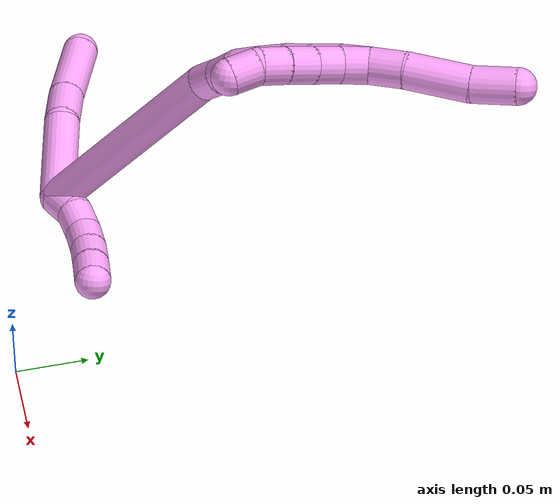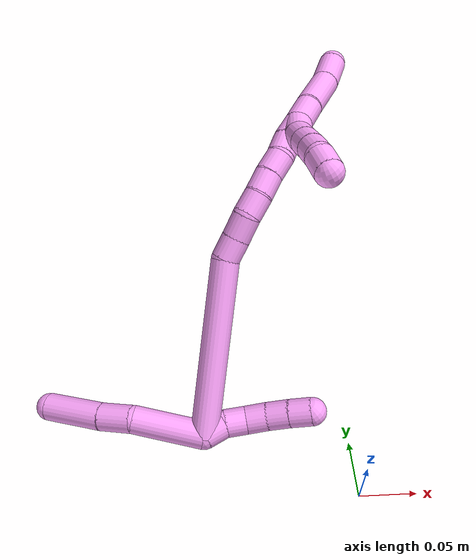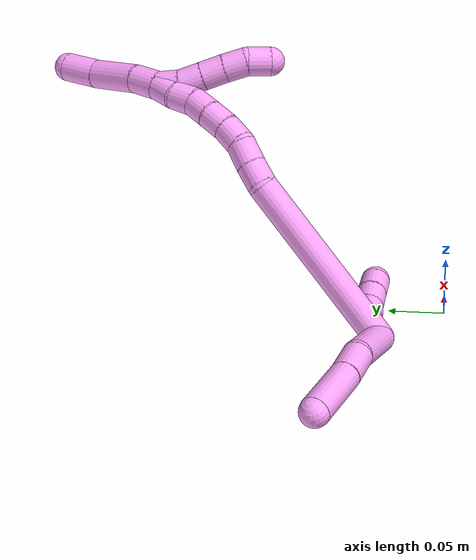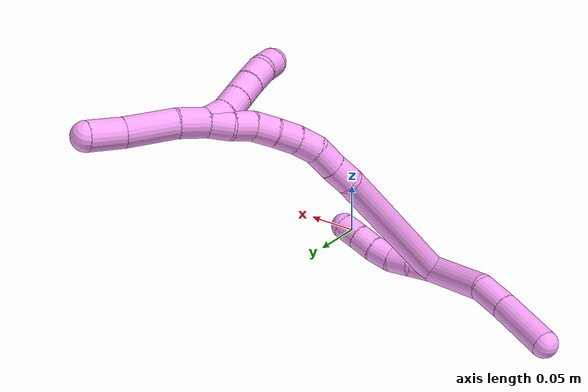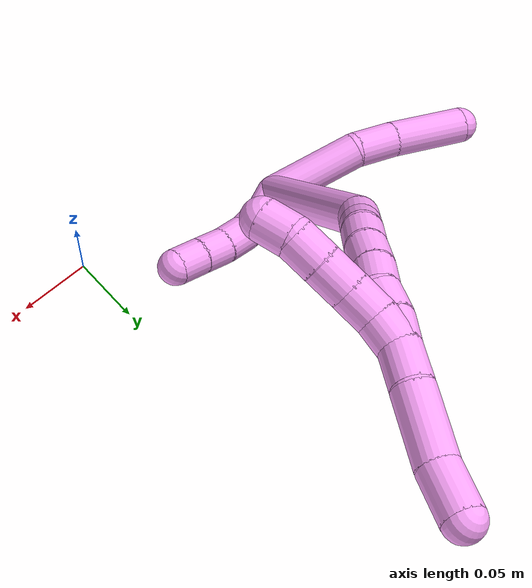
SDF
<sdf version="1.7">
 <world name="default">
  <model name="4">
   <static>0</static>
   <link name="4">
    <collision name="collision-cylinder-e_1_2_8">
     <pose>-0.024611 -0.00772 0.019468 0.377552 -0.865747 -0.176114</pose>
     <geometry><cylinder><radius>0.0125</radius><length>0.06463</length></cylinder></geometry>
     <surface>
      <friction><ode><mu>1.16</mu><mu2>1.16</mu2><slip1>0</slip1><slip2>0</slip2></ode></friction>
      <contact><ode><kp>1e+06</kp><kd>1</kd><max_vel>0</max_vel><min_depth>0.001</min_depth></ode></contact>
     </surface>
    </collision>
    <visual name="visual-cylinder-e_1_2_8">
     <pose>-0.024611 -0.00772 0.019468 0.377552 -0.865747 -0.176114</pose>
     <geometry><cylinder><radius>0.0125</radius><length>0.06463</length></cylinder></geometry>
     <material><ambient>1 0.65098 0.996078 1</ambient></material>
    </visual>
    <collision name="collision-cylinder-e_2_8_9">
     <pose>-0.063303 -0.018693 0.043814 0.587876 -1.17625 -0.398361</pose>
     <geometry><cylinder><radius>0.0125</radius><length>0.030507</length></cylinder></geometry>
     <surface>
      <friction><ode><mu>1.16</mu><mu2>1.16</mu2><slip1>0</slip1><slip2>0</slip2></ode></friction>
      <contact><ode><kp>1e+06</kp><kd>1</kd><max_vel>0</max_vel><min_depth>0.001</min_depth></ode></contact>
     </surface>
    </collision>
    <visual name="visual-cylinder-e_2_8_9">
     <pose>-0.063303 -0.018693 0.043814 0.587876 -1.17625 -0.398361</pose>
     <geometry><cylinder><radius>0.0125</radius><length>0.030507</length></cylinder></geometry>
     <material><ambient>1 0.65098 0.996078 1</ambient></material>
    </visual>
    <collision name="collision-cylinder-e_3_9_6">
     <pose>-0.102876 -0.025311 0.058248 0.338803 -1.19253 -0.231124</pose>
     <geometry><cylinder><radius>0.0125</radius><length>0.054863</length></cylinder></geometry>
     <surface>
      <friction><ode><mu>1.16</mu><mu2>1.16</mu2><slip1>0</slip1><slip2>0</slip2></ode></friction>
      <contact><ode><kp>1e+06</kp><kd>1</kd><max_vel>0</max_vel><min_depth>0.001</min_depth></ode></contact>
     </surface>
    </collision>
    <visual name="visual-cylinder-e_3_9_6">
     <pose>-0.102876 -0.025311 0.058248 0.338803 -1.19253 -0.231124</pose>
     <geometry><cylinder><radius>0.0125</radius><length>0.054863</length></cylinder></geometry>
     <material><ambient>1 0.65098 0.996078 1</ambient></material>
    </visual>
    <collision name="collision-cylinder-e_1_2_10">
     <pose>0.005774 0.007914 -0.002006 -1.81905 0.615559 -0.775645</pose>
     <geometry><cylinder><radius>0.0125</radius><length>0.02</length></cylinder></geometry>
     <surface>
      <friction><ode><mu>1.16</mu><mu2>1.16</mu2><slip1>0</slip1><slip2>0</slip2></ode></friction>
      <contact><ode><kp>1e+06</kp><kd>1</kd><max_vel>0</max_vel><min_depth>0.001</min_depth></ode></contact>
     </surface>
    </collision>
    <visual name="visual-cylinder-e_1_2_10">
     <pose>0.005774 0.007914 -0.002006 -1.81905 0.615559 -0.775645</pose>
     <geometry><cylinder><radius>0.0125</radius><length>0.02</length></cylinder></geometry>
     <material><ambient>1 0.65098 0.996078 1</ambient></material>
    </visual>
    <collision name="collision-cylinder-e_2_10_11">
     <pose>0.018277 0.021649 -0.008577 -2.23582 0.738129 -1.34318</pose>
     <geometry><cylinder><radius>0.0125</radius><length>0.02</length></cylinder></geometry>
     <surface>
      <friction><ode><mu>1.16</mu><mu2>1.16</mu2><slip1>0</slip1><slip2>0</slip2></ode></friction>
      <contact><ode><kp>1e+06</kp><kd>1</kd><max_vel>0</max_vel><min_depth>0.001</min_depth></ode></contact>
     </surface>
    </collision>
    <visual name="visual-cylinder-e_2_10_11">
     <pose>0.018277 0.021649 -0.008577 -2.23582 0.738129 -1.34318</pose>
     <geometry><cylinder><radius>0.0125</radius><length>0.02</length></cylinder></geometry>
     <material><ambient>1 0.65098 0.996078 1</ambient></material>
    </visual>
    <collision name="collision-cylinder-e_3_11_12">
     <pose>0.03343 0.032152 -0.015812 -2.08911 1.00163 -1.5114</pose>
     <geometry><cylinder><radius>0.0125</radius><length>0.02</length></cylinder></geometry>
     <surface>
      <friction><ode><mu>1.16</mu><mu2>1.16</mu2><slip1>0</slip1><slip2>0</slip2></ode></friction>
      <contact><ode><kp>1e+06</kp><kd>1</kd><max_vel>0</max_vel><min_depth>0.001</min_depth></ode></contact>
     </surface>
    </collision>
    <visual name="visual-cylinder-e_3_11_12">
     <pose>0.03343 0.032152 -0.015812 -2.08911 1.00163 -1.5114</pose>
     <geometry><cylinder><radius>0.0125</radius><length>0.02</length></cylinder></geometry>
     <material><ambient>1 0.65098 0.996078 1</ambient></material>
    </visual>
    <collision name="collision-cylinder-e_4_12_13">
     <pose>0.050885 0.040589 -0.020562 -2.07666 1.12708 -1.64062</pose>
     <geometry><cylinder><radius>0.0125</radius><length>0.02</length></cylinder></geometry>
     <surface>
      <friction><ode><mu>1.16</mu><mu2>1.16</mu2><slip1>0</slip1><slip2>0</slip2></ode></friction>
      <contact><ode><kp>1e+06</kp><kd>1</kd><max_vel>0</max_vel><min_depth>0.001</min_depth></ode></contact>
     </surface>
    </collision>
    <visual name="visual-cylinder-e_4_12_13">
     <pose>0.050885 0.040589 -0.020562 -2.07666 1.12708 -1.64062</pose>
     <geometry><cylinder><radius>0.0125</radius><length>0.02</length></cylinder></geometry>
     <material><ambient>1 0.65098 0.996078 1</ambient></material>
    </visual>
    <collision name="collision-cylinder-e_5_13_5">
     <pose>0.068876 0.047968 -0.025211 -2.18752 1.11053 -1.75236</pose>
     <geometry><cylinder><radius>0.0125</radius><length>0.02</length></cylinder></geometry>
     <surface>
      <friction><ode><mu>1.16</mu><mu2>1.16</mu2><slip1>0</slip1><slip2>0</slip2></ode></friction>
      <contact><ode><kp>1e+06</kp><kd>1</kd><max_vel>0</max_vel><min_depth>0.001</min_depth></ode></contact>
     </surface>
    </collision>
    <visual name="visual-cylinder-e_5_13_5">
     <pose>0.068876 0.047968 -0.025211 -2.18752 1.11053 -1.75236</pose>
     <geometry><cylinder><radius>0.0125</radius><length>0.02</length></cylinder></geometry>
     <material><ambient>1 0.65098 0.996078 1</ambient></material>
    </visual>
    <collision name="collision-cylinder-e_1_2_14">
     <pose>0.018903 0.052318 0.055618 -0.754833 0.242679 -0.096603</pose>
     <geometry><cylinder><radius>0.0125</radius><length>0.157325</length></cylinder></geometry>
     <surface>
      <friction><ode><mu>1.16</mu><mu2>1.16</mu2><slip1>0</slip1><slip2>0</slip2></ode></friction>
      <contact><ode><kp>1e+06</kp><kd>1</kd><max_vel>0</max_vel><min_depth>0.001</min_depth></ode></contact>
     </surface>
    </collision>
    <visual name="visual-cylinder-e_1_2_14">
     <pose>0.018903 0.052318 0.055618 -0.754833 0.242679 -0.096603</pose>
     <geometry><cylinder><radius>0.0125</radius><length>0.157325</length></cylinder></geometry>
     <material><ambient>1 0.65098 0.996078 1</ambient></material>
    </visual>
    <collision name="collision-cylinder-e_2_14_15">
     <pose>0.042966 0.111882 0.116219 -0.968425 0.530541 -0.283866</pose>
     <geometry><cylinder><radius>0.0125</radius><length>0.020394</length></cylinder></geometry>
     <surface>
      <friction><ode><mu>1.16</mu><mu2>1.16</mu2><slip1>0</slip1><slip2>0</slip2></ode></friction>
      <contact><ode><kp>1e+06</kp><kd>1</kd><max_vel>0</max_vel><min_depth>0.001</min_depth></ode></contact>
     </surface>
    </collision>
    <visual name="visual-cylinder-e_2_14_15">
     <pose>0.042966 0.111882 0.116219 -0.968425 0.530541 -0.283866</pose>
     <geometry><cylinder><radius>0.0125</radius><length>0.020394</length></cylinder></geometry>
     <material><ambient>1 0.65098 0.996078 1</ambient></material>
    </visual>
    <collision name="collision-cylinder-e_3_15_16">
     <pose>0.053777 0.126159 0.126906 -0.889154 0.558112 -0.271322</pose>
     <geometry><cylinder><radius>0.0125</radius><length>0.021343</length></cylinder></geometry>
     <surface>
      <friction><ode><mu>1.16</mu><mu2>1.16</mu2><slip1>0</slip1><slip2>0</slip2></ode></friction>
      <contact><ode><kp>1e+06</kp><kd>1</kd><max_vel>0</max_vel><min_depth>0.001</min_depth></ode></contact>
     </surface>
    </collision>
    <visual name="visual-cylinder-e_3_15_16">
     <pose>0.053777 0.126159 0.126906 -0.889154 0.558112 -0.271322</pose>
     <geometry><cylinder><radius>0.0125</radius><length>0.021343</length></cylinder></geometry>
     <material><ambient>1 0.65098 0.996078 1</ambient></material>
    </visual>
    <collision name="collision-cylinder-e_4_16_17">
     <pose>0.063471 0.141765 0.136106 -1.18365 0.411543 -0.278792</pose>
     <geometry><cylinder><radius>0.0125</radius><length>0.02021</length></cylinder></geometry>
     <surface>
      <friction><ode><mu>1.16</mu><mu2>1.16</mu2><slip1>0</slip1><slip2>0</slip2></ode></friction>
      <contact><ode><kp>1e+06</kp><kd>1</kd><max_vel>0</max_vel><min_depth>0.001</min_depth></ode></contact>
     </surface>
    </collision>
    <visual name="visual-cylinder-e_4_16_17">
     <pose>0.063471 0.141765 0.136106 -1.18365 0.411543 -0.278792</pose>
     <geometry><cylinder><radius>0.0125</radius><length>0.02021</length></cylinder></geometry>
     <material><ambient>1 0.65098 0.996078 1</ambient></material>
    </visual>
    <collision name="collision-cylinder-e_5_17_18">
     <pose>0.070316 0.159696 0.142737 -1.24751 0.276857 -0.199838</pose>
     <geometry><cylinder><radius>0.0125</radius><length>0.020513</length></cylinder></geometry>
     <surface>
      <friction><ode><mu>1.16</mu><mu2>1.16</mu2><slip1>0</slip1><slip2>0</slip2></ode></friction>
      <contact><ode><kp>1e+06</kp><kd>1</kd><max_vel>0</max_vel><min_depth>0.001</min_depth></ode></contact>
     </surface>
    </collision>
    <visual name="visual-cylinder-e_5_17_18">
     <pose>0.070316 0.159696 0.142737 -1.24751 0.276857 -0.199838</pose>
     <geometry><cylinder><radius>0.0125</radius><length>0.020513</length></cylinder></geometry>
     <material><ambient>1 0.65098 0.996078 1</ambient></material>
    </visual>
    <collision name="collision-cylinder-e_6_18_19">
     <pose>0.07623 0.178409 0.148055 -1.34149 0.312953 -0.249069</pose>
     <geometry><cylinder><radius>0.0125</radius><length>0.020201</length></cylinder></geometry>
     <surface>
      <friction><ode><mu>1.16</mu><mu2>1.16</mu2><slip1>0</slip1><slip2>0</slip2></ode></friction>
      <contact><ode><kp>1e+06</kp><kd>1</kd><max_vel>0</max_vel><min_depth>0.001</min_depth></ode></contact>
     </surface>
    </collision>
    <visual name="visual-cylinder-e_6_18_19">
     <pose>0.07623 0.178409 0.148055 -1.34149 0.312953 -0.249069</pose>
     <geometry><cylinder><radius>0.0125</radius><length>0.020201</length></cylinder></geometry>
     <material><ambient>1 0.65098 0.996078 1</ambient></material>
    </visual>
    <collision name="collision-cylinder-e_7_19_20">
     <pose>0.079556 0.19762 0.151949 -1.39905 0.021668 -0.018233</pose>
     <geometry><cylinder><radius>0.0125</radius><length>0.020005</length></cylinder></geometry>
     <surface>
      <friction><ode><mu>1.16</mu><mu2>1.16</mu2><slip1>0</slip1><slip2>0</slip2></ode></friction>
      <contact><ode><kp>1e+06</kp><kd>1</kd><max_vel>0</max_vel><min_depth>0.001</min_depth></ode></contact>
     </surface>
    </collision>
    <visual name="visual-cylinder-e_7_19_20">
     <pose>0.079556 0.19762 0.151949 -1.39905 0.021668 -0.018233</pose>
     <geometry><cylinder><radius>0.0125</radius><length>0.020005</length></cylinder></geometry>
     <material><ambient>1 0.65098 0.996078 1</ambient></material>
    </visual>
    <collision name="collision-cylinder-e_8_20_1">
     <pose>0.081958 0.217151 0.154944 -1.43866 0.220175 -0.193029</pose>
     <geometry><cylinder><radius>0.0125</radius><length>0.020008</length></cylinder></geometry>
     <surface>
      <friction><ode><mu>1.16</mu><mu2>1.16</mu2><slip1>0</slip1><slip2>0</slip2></ode></friction>
      <contact><ode><kp>1e+06</kp><kd>1</kd><max_vel>0</max_vel><min_depth>0.001</min_depth></ode></contact>
     </surface>
    </collision>
    <visual name="visual-cylinder-e_8_20_1">
     <pose>0.081958 0.217151 0.154944 -1.43866 0.220175 -0.193029</pose>
     <geometry><cylinder><radius>0.0125</radius><length>0.020008</length></cylinder></geometry>
     <material><ambient>1 0.65098 0.996078 1</ambient></material>
    </visual>
    <collision name="collision-cylinder-e_1_1_21">
     <pose>0.088054 0.217633 0.155854 1.61176 0.401881 0.418213</pose>
     <geometry><cylinder><radius>0.0125</radius><length>0.02</length></cylinder></geometry>
     <surface>
      <friction><ode><mu>1.16</mu><mu2>1.16</mu2><slip1>0</slip1><slip2>0</slip2></ode></friction>
      <contact><ode><kp>1e+06</kp><kd>1</kd><max_vel>0</max_vel><min_depth>0.001</min_depth></ode></contact>
     </surface>
    </collision>
    <visual name="visual-cylinder-e_1_1_21">
     <pose>0.088054 0.217633 0.155854 1.61176 0.401881 0.418213</pose>
     <geometry><cylinder><radius>0.0125</radius><length>0.02</length></cylinder></geometry>
     <material><ambient>1 0.65098 0.996078 1</ambient></material>
    </visual>
    <collision name="collision-cylinder-e_2_21_22">
     <pose>0.09853 0.200905 0.155887 1.51637 0.716096 0.68108</pose>
     <geometry><cylinder><radius>0.0125</radius><length>0.02</length></cylinder></geometry>
     <surface>
      <friction><ode><mu>1.16</mu><mu2>1.16</mu2><slip1>0</slip1><slip2>0</slip2></ode></friction>
      <contact><ode><kp>1e+06</kp><kd>1</kd><max_vel>0</max_vel><min_depth>0.001</min_depth></ode></contact>
     </surface>
    </collision>
    <visual name="visual-cylinder-e_2_21_22">
     <pose>0.09853 0.200905 0.155887 1.51637 0.716096 0.68108</pose>
     <geometry><cylinder><radius>0.0125</radius><length>0.02</length></cylinder></geometry>
     <material><ambient>1 0.65098 0.996078 1</ambient></material>
    </visual>
    <collision name="collision-cylinder-e_3_22_23">
     <pose>0.111752 0.185921 0.156678 1.51976 0.728584 0.695232</pose>
     <geometry><cylinder><radius>0.0125</radius><length>0.02</length></cylinder></geometry>
     <surface>
      <friction><ode><mu>1.16</mu><mu2>1.16</mu2><slip1>0</slip1><slip2>0</slip2></ode></friction>
      <contact><ode><kp>1e+06</kp><kd>1</kd><max_vel>0</max_vel><min_depth>0.001</min_depth></ode></contact>
     </surface>
    </collision>
    <visual name="visual-cylinder-e_3_22_23">
     <pose>0.111752 0.185921 0.156678 1.51976 0.728584 0.695232</pose>
     <geometry><cylinder><radius>0.0125</radius><length>0.02</length></cylinder></geometry>
     <material><ambient>1 0.65098 0.996078 1</ambient></material>
    </visual>
    <collision name="collision-cylinder-e_4_23_24">
     <pose>0.124813 0.170788 0.157091 1.5666 0.694862 0.69218</pose>
     <geometry><cylinder><radius>0.0125</radius><length>0.02</length></cylinder></geometry>
     <surface>
      <friction><ode><mu>1.16</mu><mu2>1.16</mu2><slip1>0</slip1><slip2>0</slip2></ode></friction>
      <contact><ode><kp>1e+06</kp><kd>1</kd><max_vel>0</max_vel><min_depth>0.001</min_depth></ode></contact>
     </surface>
    </collision>
    <visual name="visual-cylinder-e_4_23_24">
     <pose>0.124813 0.170788 0.157091 1.5666 0.694862 0.69218</pose>
     <geometry><cylinder><radius>0.0125</radius><length>0.02</length></cylinder></geometry>
     <material><ambient>1 0.65098 0.996078 1</ambient></material>
    </visual>
    <collision name="collision-cylinder-e_5_24_4">
     <pose>0.136933 0.155569 0.153882 1.97689 0.608524 0.889887</pose>
     <geometry><cylinder><radius>0.0125</radius><length>0.02</length></cylinder></geometry>
     <surface>
      <friction><ode><mu>1.16</mu><mu2>1.16</mu2><slip1>0</slip1><slip2>0</slip2></ode></friction>
      <contact><ode><kp>1e+06</kp><kd>1</kd><max_vel>0</max_vel><min_depth>0.001</min_depth></ode></contact>
     </surface>
    </collision>
    <visual name="visual-cylinder-e_5_24_4">
     <pose>0.136933 0.155569 0.153882 1.97689 0.608524 0.889887</pose>
     <geometry><cylinder><radius>0.0125</radius><length>0.02</length></cylinder></geometry>
     <material><ambient>1 0.65098 0.996078 1</ambient></material>
    </visual>
    <collision name="collision-cylinder-e_1_1_25">
     <pose>0.085087 0.239395 0.156929 -1.51525 0.074902 -0.070857</pose>
     <geometry><cylinder><radius>0.0125</radius><length>0.025244</length></cylinder></geometry>
     <surface>
      <friction><ode><mu>1.16</mu><mu2>1.16</mu2><slip1>0</slip1><slip2>0</slip2></ode></friction>
      <contact><ode><kp>1e+06</kp><kd>1</kd><max_vel>0</max_vel><min_depth>0.001</min_depth></ode></contact>
     </surface>
    </collision>
    <visual name="visual-cylinder-e_1_1_25">
     <pose>0.085087 0.239395 0.156929 -1.51525 0.074902 -0.070857</pose>
     <geometry><cylinder><radius>0.0125</radius><length>0.025244</length></cylinder></geometry>
     <material><ambient>1 0.65098 0.996078 1</ambient></material>
    </visual>
    <collision name="collision-cylinder-e_2_25_26">
     <pose>0.085593 0.27392 0.156483 -1.62292 -0.01993 0.020997</pose>
     <geometry><cylinder><radius>0.0125</radius><length>0.043982</length></cylinder></geometry>
     <surface>
      <friction><ode><mu>1.16</mu><mu2>1.16</mu2><slip1>0</slip1><slip2>0</slip2></ode></friction>
      <contact><ode><kp>1e+06</kp><kd>1</kd><max_vel>0</max_vel><min_depth>0.001</min_depth></ode></contact>
     </surface>
    </collision>
    <visual name="visual-cylinder-e_2_25_26">
     <pose>0.085593 0.27392 0.156483 -1.62292 -0.01993 0.020997</pose>
     <geometry><cylinder><radius>0.0125</radius><length>0.043982</length></cylinder></geometry>
     <material><ambient>1 0.65098 0.996078 1</ambient></material>
    </visual>
    <collision name="collision-cylinder-e_3_26_3">
     <pose>0.08439 0.311149 0.157046 -1.45934 -0.049728 0.044475</pose>
     <geometry><cylinder><radius>0.0125</radius><length>0.030774</length></cylinder></geometry>
     <surface>
      <friction><ode><mu>1.16</mu><mu2>1.16</mu2><slip1>0</slip1><slip2>0</slip2></ode></friction>
      <contact><ode><kp>1e+06</kp><kd>1</kd><max_vel>0</max_vel><min_depth>0.001</min_depth></ode></contact>
     </surface>
    </collision>
    <visual name="visual-cylinder-e_3_26_3">
     <pose>0.08439 0.311149 0.157046 -1.45934 -0.049728 0.044475</pose>
     <geometry><cylinder><radius>0.0125</radius><length>0.030774</length></cylinder></geometry>
     <material><ambient>1 0.65098 0.996078 1</ambient></material>
    </visual>
    <collision name="collision-sphere-3">
     <pose>0.083625 0.326421 0.158755 0 -0 0</pose>
     <geometry><sphere><radius>0.0125</radius></sphere></geometry>
     <surface>
      <friction><ode><mu>1.16</mu><mu2>1.16</mu2><slip1>0</slip1><slip2>0</slip2></ode></friction>
      <contact><ode><kp>1e+06</kp><kd>1</kd><max_vel>0</max_vel><min_depth>0.001</min_depth></ode></contact>
     </surface>
    </collision>
    <visual name="visual-sphere-3">
     <pose>0.083625 0.326421 0.158755 0 -0 0</pose>
     <geometry><sphere><radius>0.0125</radius></sphere></geometry>
     <material><ambient>1 0.65098 0.996078 1</ambient></material>
    </visual>
    <collision name="collision-sphere-26">
     <pose>0.085155 0.295876 0.155337 0 -0 0</pose>
     <geometry><sphere><radius>0.0125</radius></sphere></geometry>
     <surface>
      <friction><ode><mu>1.16</mu><mu2>1.16</mu2><slip1>0</slip1><slip2>0</slip2></ode></friction>
      <contact><ode><kp>1e+06</kp><kd>1</kd><max_vel>0</max_vel><min_depth>0.001</min_depth></ode></contact>
     </surface>
    </collision>
    <visual name="visual-sphere-26">
     <pose>0.085155 0.295876 0.155337 0 -0 0</pose>
     <geometry><sphere><radius>0.0125</radius></sphere></geometry>
     <material><ambient>1 0.65098 0.996078 1</ambient></material>
    </visual>
    <collision name="collision-sphere-25">
     <pose>0.086032 0.251963 0.157628 0 -0 0</pose>
     <geometry><sphere><radius>0.0125</radius></sphere></geometry>
     <surface>
      <friction><ode><mu>1.16</mu><mu2>1.16</mu2><slip1>0</slip1><slip2>0</slip2></ode></friction>
      <contact><ode><kp>1e+06</kp><kd>1</kd><max_vel>0</max_vel><min_depth>0.001</min_depth></ode></contact>
     </surface>
    </collision>
    <visual name="visual-sphere-25">
     <pose>0.086032 0.251963 0.157628 0 -0 0</pose>
     <geometry><sphere><radius>0.0125</radius></sphere></geometry>
     <material><ambient>1 0.65098 0.996078 1</ambient></material>
    </visual>
    <collision name="collision-sphere-4">
     <pose>0.142649 0.148031 0.150641 0 -0 0</pose>
     <geometry><sphere><radius>0.0125</radius></sphere></geometry>
     <surface>
      <friction><ode><mu>1.16</mu><mu2>1.16</mu2><slip1>0</slip1><slip2>0</slip2></ode></friction>
      <contact><ode><kp>1e+06</kp><kd>1</kd><max_vel>0</max_vel><min_depth>0.001</min_depth></ode></contact>
     </surface>
    </collision>
    <visual name="visual-sphere-4">
     <pose>0.142649 0.148031 0.150641 0 -0 0</pose>
     <geometry><sphere><radius>0.0125</radius></sphere></geometry>
     <material><ambient>1 0.65098 0.996078 1</ambient></material>
    </visual>
    <collision name="collision-sphere-24">
     <pose>0.131216 0.163106 0.157123 0 -0 0</pose>
     <geometry><sphere><radius>0.0125</radius></sphere></geometry>
     <surface>
      <friction><ode><mu>1.16</mu><mu2>1.16</mu2><slip1>0</slip1><slip2>0</slip2></ode></friction>
      <contact><ode><kp>1e+06</kp><kd>1</kd><max_vel>0</max_vel><min_depth>0.001</min_depth></ode></contact>
     </surface>
    </collision>
    <visual name="visual-sphere-24">
     <pose>0.131216 0.163106 0.157123 0 -0 0</pose>
     <geometry><sphere><radius>0.0125</radius></sphere></geometry>
     <material><ambient>1 0.65098 0.996078 1</ambient></material>
    </visual>
    <collision name="collision-sphere-23">
     <pose>0.118411 0.178469 0.157059 0 -0 0</pose>
     <geometry><sphere><radius>0.0125</radius></sphere></geometry>
     <surface>
      <friction><ode><mu>1.16</mu><mu2>1.16</mu2><slip1>0</slip1><slip2>0</slip2></ode></friction>
      <contact><ode><kp>1e+06</kp><kd>1</kd><max_vel>0</max_vel><min_depth>0.001</min_depth></ode></contact>
     </surface>
    </collision>
    <visual name="visual-sphere-23">
     <pose>0.118411 0.178469 0.157059 0 -0 0</pose>
     <geometry><sphere><radius>0.0125</radius></sphere></geometry>
     <material><ambient>1 0.65098 0.996078 1</ambient></material>
    </visual>
    <collision name="collision-sphere-22">
     <pose>0.105094 0.193372 0.156297 0 -0 0</pose>
     <geometry><sphere><radius>0.0125</radius></sphere></geometry>
     <surface>
      <friction><ode><mu>1.16</mu><mu2>1.16</mu2><slip1>0</slip1><slip2>0</slip2></ode></friction>
      <contact><ode><kp>1e+06</kp><kd>1</kd><max_vel>0</max_vel><min_depth>0.001</min_depth></ode></contact>
     </surface>
    </collision>
    <visual name="visual-sphere-22">
     <pose>0.105094 0.193372 0.156297 0 -0 0</pose>
     <geometry><sphere><radius>0.0125</radius></sphere></geometry>
     <material><ambient>1 0.65098 0.996078 1</ambient></material>
    </visual>
    <collision name="collision-sphere-21">
     <pose>0.091965 0.208437 0.155477 0 -0 0</pose>
     <geometry><sphere><radius>0.0125</radius></sphere></geometry>
     <surface>
      <friction><ode><mu>1.16</mu><mu2>1.16</mu2><slip1>0</slip1><slip2>0</slip2></ode></friction>
      <contact><ode><kp>1e+06</kp><kd>1</kd><max_vel>0</max_vel><min_depth>0.001</min_depth></ode></contact>
     </surface>
    </collision>
    <visual name="visual-sphere-21">
     <pose>0.091965 0.208437 0.155477 0 -0 0</pose>
     <geometry><sphere><radius>0.0125</radius></sphere></geometry>
     <material><ambient>1 0.65098 0.996078 1</ambient></material>
    </visual>
    <collision name="collision-sphere-1">
     <pose>0.084142 0.226828 0.15623 0 -0 0</pose>
     <geometry><sphere><radius>0.0125</radius></sphere></geometry>
     <surface>
      <friction><ode><mu>1.16</mu><mu2>1.16</mu2><slip1>0</slip1><slip2>0</slip2></ode></friction>
      <contact><ode><kp>1e+06</kp><kd>1</kd><max_vel>0</max_vel><min_depth>0.001</min_depth></ode></contact>
     </surface>
    </collision>
    <visual name="visual-sphere-1">
     <pose>0.084142 0.226828 0.15623 0 -0 0</pose>
     <geometry><sphere><radius>0.0125</radius></sphere></geometry>
     <material><ambient>1 0.65098 0.996078 1</ambient></material>
    </visual>
    <collision name="collision-sphere-11">
     <pose>0.025006 0.02747 -0.013142 0 -0 0</pose>
     <geometry><sphere><radius>0.0125</radius></sphere></geometry>
     <surface>
      <friction><ode><mu>1.16</mu><mu2>1.16</mu2><slip1>0</slip1><slip2>0</slip2></ode></friction>
      <contact><ode><kp>1e+06</kp><kd>1</kd><max_vel>0</max_vel><min_depth>0.001</min_depth></ode></contact>
     </surface>
    </collision>
    <visual name="visual-sphere-11">
     <pose>0.025006 0.02747 -0.013142 0 -0 0</pose>
     <geometry><sphere><radius>0.0125</radius></sphere></geometry>
     <material><ambient>1 0.65098 0.996078 1</ambient></material>
    </visual>
    <collision name="collision-sphere-10">
     <pose>0.011548 0.015828 -0.004012 0 -0 0</pose>
     <geometry><sphere><radius>0.0125</radius></sphere></geometry>
     <surface>
      <friction><ode><mu>1.16</mu><mu2>1.16</mu2><slip1>0</slip1><slip2>0</slip2></ode></friction>
      <contact><ode><kp>1e+06</kp><kd>1</kd><max_vel>0</max_vel><min_depth>0.001</min_depth></ode></contact>
     </surface>
    </collision>
    <visual name="visual-sphere-10">
     <pose>0.011548 0.015828 -0.004012 0 -0 0</pose>
     <geometry><sphere><radius>0.0125</radius></sphere></geometry>
     <material><ambient>1 0.65098 0.996078 1</ambient></material>
    </visual>
    <collision name="collision-sphere-6">
     <pose>-0.128368 -0.028678 0.067803 0 -0 0</pose>
     <geometry><sphere><radius>0.0125</radius></sphere></geometry>
     <surface>
      <friction><ode><mu>1.16</mu><mu2>1.16</mu2><slip1>0</slip1><slip2>0</slip2></ode></friction>
      <contact><ode><kp>1e+06</kp><kd>1</kd><max_vel>0</max_vel><min_depth>0.001</min_depth></ode></contact>
     </surface>
    </collision>
    <visual name="visual-sphere-6">
     <pose>-0.128368 -0.028678 0.067803 0 -0 0</pose>
     <geometry><sphere><radius>0.0125</radius></sphere></geometry>
     <material><ambient>1 0.65098 0.996078 1</ambient></material>
    </visual>
    <collision name="collision-sphere-9">
     <pose>-0.077384 -0.021944 0.048693 0 -0 0</pose>
     <geometry><sphere><radius>0.0125</radius></sphere></geometry>
     <surface>
      <friction><ode><mu>1.16</mu><mu2>1.16</mu2><slip1>0</slip1><slip2>0</slip2></ode></friction>
      <contact><ode><kp>1e+06</kp><kd>1</kd><max_vel>0</max_vel><min_depth>0.001</min_depth></ode></contact>
     </surface>
    </collision>
    <visual name="visual-sphere-9">
     <pose>-0.077384 -0.021944 0.048693 0 -0 0</pose>
     <geometry><sphere><radius>0.0125</radius></sphere></geometry>
     <material><ambient>1 0.65098 0.996078 1</ambient></material>
    </visual>
    <collision name="collision-sphere-2">
     <geometry><sphere><radius>0.0125</radius></sphere></geometry>
     <surface>
      <friction><ode><mu>1.16</mu><mu2>1.16</mu2><slip1>0</slip1><slip2>0</slip2></ode></friction>
      <contact><ode><kp>1e+06</kp><kd>1</kd><max_vel>0</max_vel><min_depth>0.001</min_depth></ode></contact>
     </surface>
    </collision>
    <visual name="visual-sphere-2">
     <geometry><sphere><radius>0.0125</radius></sphere></geometry>
     <material><ambient>1 0.65098 0.996078 1</ambient></material>
    </visual>
    <collision name="collision-sphere-19">
     <pose>0.079339 0.187767 0.15024 0 -0 0</pose>
     <geometry><sphere><radius>0.0125</radius></sphere></geometry>
     <surface>
      <friction><ode><mu>1.16</mu><mu2>1.16</mu2><slip1>0</slip1><slip2>0</slip2></ode></friction>
      <contact><ode><kp>1e+06</kp><kd>1</kd><max_vel>0</max_vel><min_depth>0.001</min_depth></ode></contact>
     </surface>
    </collision>
    <visual name="visual-sphere-19">
     <pose>0.079339 0.187767 0.15024 0 -0 0</pose>
     <geometry><sphere><radius>0.0125</radius></sphere></geometry>
     <material><ambient>1 0.65098 0.996078 1</ambient></material>
    </visual>
    <collision name="collision-sphere-8">
     <pose>-0.049221 -0.015441 0.038935 0 -0 0</pose>
     <geometry><sphere><radius>0.0125</radius></sphere></geometry>
     <surface>
      <friction><ode><mu>1.16</mu><mu2>1.16</mu2><slip1>0</slip1><slip2>0</slip2></ode></friction>
      <contact><ode><kp>1e+06</kp><kd>1</kd><max_vel>0</max_vel><min_depth>0.001</min_depth></ode></contact>
     </surface>
    </collision>
    <visual name="visual-sphere-8">
     <pose>-0.049221 -0.015441 0.038935 0 -0 0</pose>
     <geometry><sphere><radius>0.0125</radius></sphere></geometry>
     <material><ambient>1 0.65098 0.996078 1</ambient></material>
    </visual>
    <collision name="collision-sphere-12">
     <pose>0.041853 0.036833 -0.018482 0 -0 0</pose>
     <geometry><sphere><radius>0.0125</radius></sphere></geometry>
     <surface>
      <friction><ode><mu>1.16</mu><mu2>1.16</mu2><slip1>0</slip1><slip2>0</slip2></ode></friction>
      <contact><ode><kp>1e+06</kp><kd>1</kd><max_vel>0</max_vel><min_depth>0.001</min_depth></ode></contact>
     </surface>
    </collision>
    <visual name="visual-sphere-12">
     <pose>0.041853 0.036833 -0.018482 0 -0 0</pose>
     <geometry><sphere><radius>0.0125</radius></sphere></geometry>
     <material><ambient>1 0.65098 0.996078 1</ambient></material>
    </visual>
    <collision name="collision-sphere-13">
     <pose>0.059917 0.044344 -0.022642 0 -0 0</pose>
     <geometry><sphere><radius>0.0125</radius></sphere></geometry>
     <surface>
      <friction><ode><mu>1.16</mu><mu2>1.16</mu2><slip1>0</slip1><slip2>0</slip2></ode></friction>
      <contact><ode><kp>1e+06</kp><kd>1</kd><max_vel>0</max_vel><min_depth>0.001</min_depth></ode></contact>
     </surface>
    </collision>
    <visual name="visual-sphere-13">
     <pose>0.059917 0.044344 -0.022642 0 -0 0</pose>
     <geometry><sphere><radius>0.0125</radius></sphere></geometry>
     <material><ambient>1 0.65098 0.996078 1</ambient></material>
    </visual>
    <collision name="collision-sphere-5">
     <pose>0.077835 0.051591 -0.02778 0 -0 0</pose>
     <geometry><sphere><radius>0.0125</radius></sphere></geometry>
     <surface>
      <friction><ode><mu>1.16</mu><mu2>1.16</mu2><slip1>0</slip1><slip2>0</slip2></ode></friction>
      <contact><ode><kp>1e+06</kp><kd>1</kd><max_vel>0</max_vel><min_depth>0.001</min_depth></ode></contact>
     </surface>
    </collision>
    <visual name="visual-sphere-5">
     <pose>0.077835 0.051591 -0.02778 0 -0 0</pose>
     <geometry><sphere><radius>0.0125</radius></sphere></geometry>
     <material><ambient>1 0.65098 0.996078 1</ambient></material>
    </visual>
    <collision name="collision-sphere-14">
     <pose>0.037806 0.104635 0.111235 0 -0 0</pose>
     <geometry><sphere><radius>0.0125</radius></sphere></geometry>
     <surface>
      <friction><ode><mu>1.16</mu><mu2>1.16</mu2><slip1>0</slip1><slip2>0</slip2></ode></friction>
      <contact><ode><kp>1e+06</kp><kd>1</kd><max_vel>0</max_vel><min_depth>0.001</min_depth></ode></contact>
     </surface>
    </collision>
    <visual name="visual-sphere-14">
     <pose>0.037806 0.104635 0.111235 0 -0 0</pose>
     <geometry><sphere><radius>0.0125</radius></sphere></geometry>
     <material><ambient>1 0.65098 0.996078 1</ambient></material>
    </visual>
    <collision name="collision-sphere-15">
     <pose>0.048125 0.11913 0.121202 0 -0 0</pose>
     <geometry><sphere><radius>0.0125</radius></sphere></geometry>
     <surface>
      <friction><ode><mu>1.16</mu><mu2>1.16</mu2><slip1>0</slip1><slip2>0</slip2></ode></friction>
      <contact><ode><kp>1e+06</kp><kd>1</kd><max_vel>0</max_vel><min_depth>0.001</min_depth></ode></contact>
     </surface>
    </collision>
    <visual name="visual-sphere-15">
     <pose>0.048125 0.11913 0.121202 0 -0 0</pose>
     <geometry><sphere><radius>0.0125</radius></sphere></geometry>
     <material><ambient>1 0.65098 0.996078 1</ambient></material>
    </visual>
    <collision name="collision-sphere-16">
     <pose>0.059428 0.133189 0.132609 0 -0 0</pose>
     <geometry><sphere><radius>0.0125</radius></sphere></geometry>
     <surface>
      <friction><ode><mu>1.16</mu><mu2>1.16</mu2><slip1>0</slip1><slip2>0</slip2></ode></friction>
      <contact><ode><kp>1e+06</kp><kd>1</kd><max_vel>0</max_vel><min_depth>0.001</min_depth></ode></contact>
     </surface>
    </collision>
    <visual name="visual-sphere-16">
     <pose>0.059428 0.133189 0.132609 0 -0 0</pose>
     <geometry><sphere><radius>0.0125</radius></sphere></geometry>
     <material><ambient>1 0.65098 0.996078 1</ambient></material>
    </visual>
    <collision name="collision-sphere-17">
     <pose>0.067513 0.150341 0.139603 0 -0 0</pose>
     <geometry><sphere><radius>0.0125</radius></sphere></geometry>
     <surface>
      <friction><ode><mu>1.16</mu><mu2>1.16</mu2><slip1>0</slip1><slip2>0</slip2></ode></friction>
      <contact><ode><kp>1e+06</kp><kd>1</kd><max_vel>0</max_vel><min_depth>0.001</min_depth></ode></contact>
     </surface>
    </collision>
    <visual name="visual-sphere-17">
     <pose>0.067513 0.150341 0.139603 0 -0 0</pose>
     <geometry><sphere><radius>0.0125</radius></sphere></geometry>
     <material><ambient>1 0.65098 0.996078 1</ambient></material>
    </visual>
    <collision name="collision-sphere-18">
     <pose>0.07312 0.169051 0.145871 0 -0 0</pose>
     <geometry><sphere><radius>0.0125</radius></sphere></geometry>
     <surface>
      <friction><ode><mu>1.16</mu><mu2>1.16</mu2><slip1>0</slip1><slip2>0</slip2></ode></friction>
      <contact><ode><kp>1e+06</kp><kd>1</kd><max_vel>0</max_vel><min_depth>0.001</min_depth></ode></contact>
     </surface>
    </collision>
    <visual name="visual-sphere-18">
     <pose>0.07312 0.169051 0.145871 0 -0 0</pose>
     <geometry><sphere><radius>0.0125</radius></sphere></geometry>
     <material><ambient>1 0.65098 0.996078 1</ambient></material>
    </visual>
    <collision name="collision-sphere-20">
     <pose>0.079773 0.207473 0.153658 0 -0 0</pose>
     <geometry><sphere><radius>0.0125</radius></sphere></geometry>
     <surface>
      <friction><ode><mu>1.16</mu><mu2>1.16</mu2><slip1>0</slip1><slip2>0</slip2></ode></friction>
      <contact><ode><kp>1e+06</kp><kd>1</kd><max_vel>0</max_vel><min_depth>0.001</min_depth></ode></contact>
     </surface>
    </collision>
    <visual name="visual-sphere-20">
     <pose>0.079773 0.207473 0.153658 0 -0 0</pose>
     <geometry><sphere><radius>0.0125</radius></sphere></geometry>
     <material><ambient>1 0.65098 0.996078 1</ambient></material>
    </visual>
    <inertial>
     <pose>0.035446 0.104105 0.085667 0 -0 0</pose>
     <mass>0.75</mass>
     <inertia>
      <ixx>0.000341</ixx>
      <ixy>0</ixy>
      <ixz>0</ixz>
      <iyy>0.000283</iyy>
      <iyz>0</iyz>
      <izz>-0.000273</izz>
     </inertia>
    </inertial>
   </link>
   <pose>-0.130375 0.052943 0.021047 0.055758 -0.538829 -0.506014</pose>
  </model>
 </world>
</sdf>
